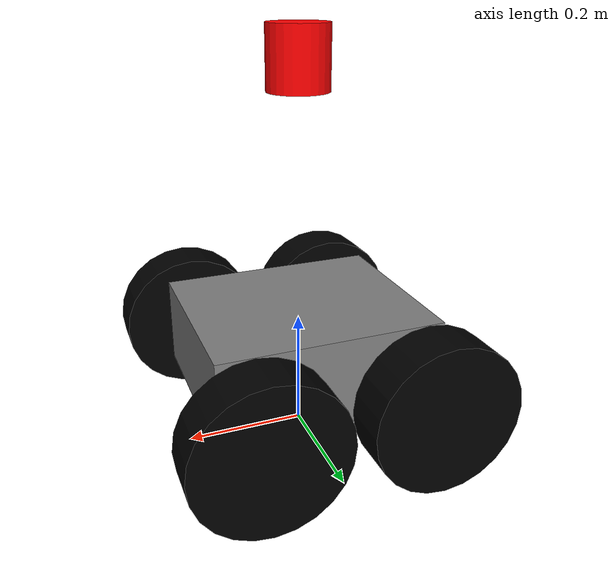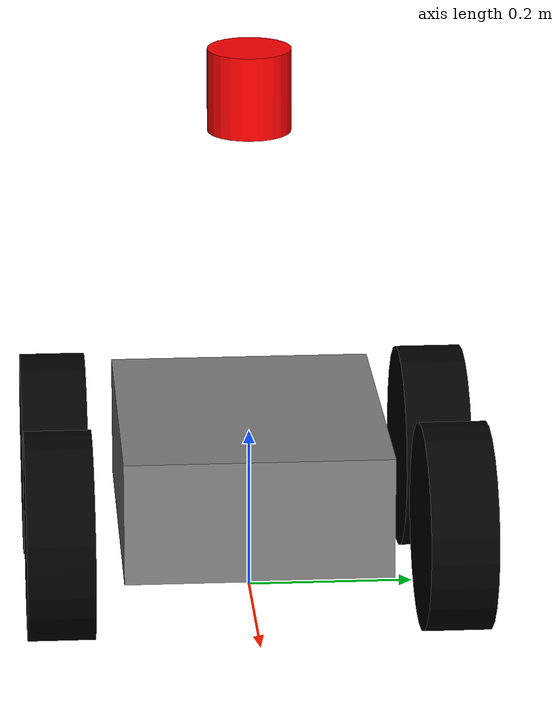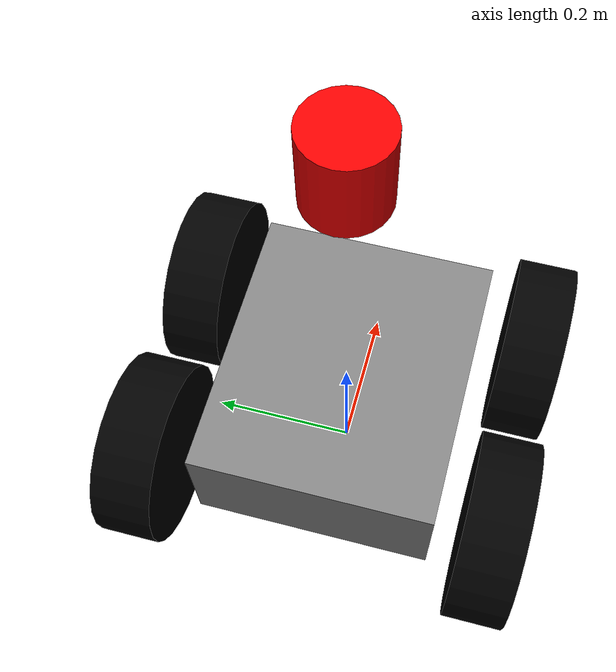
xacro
<?xml version="1.0"?>
<robot
  xmlns:xacro="http://ros.org/wiki/xacro"
  xmlns:controller="http://playerstage.sourceforge.net/gazebo/xmlschema/#controller"
  xmlns:interface="http://playerstage.sourceforge.net/gazebo/xmlschema/#interface"
  xmlns:sensor="http://playerstage.sourceforge.net/gazebo/xmlschema/#sensor"
  xmlns:gz="http://gazebosim.org/schema"
  name="robot">

  <xacro:include filename="$(find rmagine_gazebo_plugins)/urdf/common.urdf.xacro" />
  <xacro:include filename="$(find rmagine_gazebo_plugins)/urdf/wheel.urdf.xacro" />

  <!-- Args -->
  <xacro:arg name="enable_gazebo_scan" default="true"/>
  <xacro:arg name="rmagine_backend" default="embree"/>

  <xacro:property name="M_PI" value="3.14159265359"/>

  <xacro:property name="body_height" value="0.15"/>
  <xacro:property name="body_length" value="0.38"/>
  <xacro:property name="body_width" value="0.32"/>

  <xacro:property name="axis_front" value="0.14"/>
  <xacro:property name="axis_back" value="-0.14"/>

  <xacro:property name="wheel_thickness" value="0.08"/>
  <xacro:property name="wheel_body_offset" value="${wheel_thickness/2 + 0.035}"/>
  <xacro:property name="wheel_radius" value="0.125"/>
  <xacro:property name="axis_height" value="-0.03"/>
  <xacro:property name="axis_right" value="${-body_width/2 - wheel_body_offset}"/>
  <xacro:property name="axis_left" value="${body_width/2 + wheel_body_offset}"/>
  <xacro:property name="axis_length" value="${body_width + 2 * wheel_body_offset}" />
  <xacro:property name="turning_adaptation" value="2.95" />

  <xacro:property name="body_mass" value="25.0"/>
  <xacro:property name="wheel_mass" value="5.0"/>

  <xacro:property name="imu_width" value="0.036"/>
  <xacro:property name="imu_length" value="0.038"/>
  <xacro:property name="imu_height" value="0.012"/>

  <xacro:property name="imu_offset_x" value="0"/>
  <xacro:property name="imu_offset_y" value="0"/>
  <xacro:property name="imu_offset_z" value="${- body_height/2 + 0.005 + 0.007}"/>

  <xacro:property name="em_body_length" value="0.11"/>
  <xacro:property name="em_body_width" value="0.04"/>
  <xacro:property name="em_body_height" value="0.03"/>

  <xacro:property name="em_button_radius" value="0.0125"/>
  <xacro:property name="em_button_depth" value="0.02" />

  <link name="base_footprint"/>
  <link name="base_link">
    <visual>
      <origin xyz="0 0 0" rpy="0 0 0" />
      <geometry>
        <box size="${body_length} ${body_width} ${body_height}"/>
      </geometry>
      <material name="silver" >
        <color rgba="0.5 0.5 0.5 1" />
      </material>
    </visual>
    <collision>
      <origin xyz="0 0 0" rpy="0 0 0" />
      <geometry>
        <box size="${body_length} ${body_width} ${body_height}"/>
      </geometry>
    </collision>
    <xacro:box_inertial
      x="${body_length}"
      y="${body_width}"
      z="${body_height}"
      mass="${body_mass}"/>
  </link>

  <joint name="base_footprint_to_base_joint" type="fixed">
    <origin xyz="0 0 ${wheel_radius - axis_height}" rpy="0 0 0" />
    <parent link="base_footprint"/>
    <child link="base_link" />
  </joint>

  <xacro:wheel name="left_front_wheel" parent="base_link">
    <origin xyz="${axis_front} ${axis_left} ${axis_height}" rpy="0 0 0"/>
  </xacro:wheel>

  <xacro:wheel name="left_rear_wheel" parent="base_link">
    <origin xyz="${axis_back} ${axis_left} ${axis_height}" rpy="0 0 0" />
  </xacro:wheel>

  <xacro:wheel name="right_front_wheel" parent="base_link">
    <origin xyz="${axis_front} ${axis_right} ${axis_height}" rpy="0 0 0"/>
  </xacro:wheel>

  <xacro:wheel name="right_rear_wheel" parent="base_link">
    <origin xyz="${axis_back} ${axis_right} ${axis_height}" rpy="0 0 0" />
  </xacro:wheel>

  <!-- Gazebo Plugins -->

  <link name="lidar3d">
    <visual>
      <origin xyz="0 0 0" rpy="0 0 0" />
      <geometry>
        <cylinder radius="0.05" length="0.1"/>
      </geometry>
      <material name="red" >
        <color rgba="1 0 0 1" />
      </material>
    </visual>
    <collision>
      <geometry>
        <cylinder radius="0.05" length="0.1"/>
      </geometry>
    </collision>
    <xacro:cylinder_inertial
      radius="0.05"
      length="0.1"
      mass="0.1"
      />
  </link>

  <joint name="lidar3d_to_base_joint" type="fixed">
    <parent link="base_link" />
    <child link="lidar3d" />
    <origin xyz="0 0 ${body_height/2 + 0.4}"/>
  </joint>

  <gazebo reference="lidar3d">

    <xacro:if value="$(arg enable_gazebo_scan)">
      <sensor name="lidar3d_gazebo_sensor" type="gpu_lidar">
        <pose relative_to="lidar3d">0 0 0 0 0 0</pose>
        <topic>/model/robot/lidar3d/gazebo</topic>
        <update_rate>10</update_rate>
        <ray>
          <scan>
            <horizontal>
              <samples>360</samples>
              <resolution>1</resolution>
              <min_angle>${-M_PI}</min_angle>
              <max_angle>${M_PI}</max_angle>
            </horizontal>
            <vertical>
              <samples>16</samples>
              <resolution>0.01</resolution>
              <min_angle>-${15.0 * M_PI/180.0}</min_angle>
              <max_angle> ${15.0 * M_PI/180.0}</max_angle>
            </vertical>
          </scan>
          <range>
            <min>0.2</min>
            <max>100.0</max>
            <resolution>0.01</resolution>
          </range>
        </ray>
        <always_on>1</always_on>
        <visualize>true</visualize>
        <frame_id>lidar3d</frame_id>
        <gz_frame_id>lidar3d</gz_frame_id>
        <ign_frame_id>lidar3d</ign_frame_id>
      </sensor>
    </xacro:if>

    <sensor name="lidar3d_rmagine_sensor" type="custom" gz:type="rmagine_$(arg rmagine_backend)">
      <always_on>true</always_on>
      <update_rate>20</update_rate>
      <map_key>default</map_key>
      <frame>lidar3d</frame>
      <topic_scan>/model/robot/lidar3d/rmagine</topic_scan>
      <topic_points>/model/robot/lidar3d/rmagine/points</topic_points>
      <lidar>
        <scan>
          <horizontal>
            <min_angle>${-M_PI}</min_angle>
            <increment>${1.0 * M_PI / 180.0}</increment>
            <samples>360</samples>
          </horizontal>
          <vertical>
            <min_angle>${-15.0 * M_PI / 180.0}</min_angle>
            <increment>${2.0 * M_PI / 180.0}</increment>
            <samples>16</samples>
          </vertical>
        </scan>
        <range>
          <min>0.15</min>
          <max>30.0</max>
        </range>
      </lidar>
    </sensor>

  </gazebo>

  <gazebo>
    <plugin
        filename="libignition-gazebo-diff-drive-system.so"
        name="ignition::gazebo::systems::DiffDrive">

      <num_wheel_pairs>2</num_wheel_pairs>
      <!-- wheels0 -->
      <left_joint>left_front_wheel</left_joint>
      <right_joint>right_front_wheel</right_joint>
      <wheel_separation>${axis_length}</wheel_separation>
      <wheel_radius>${wheel_radius}</wheel_radius>

      <!-- wheels1-->
      <left_joint>left_rear_wheel</left_joint>
      <right_joint>right_rear_wheel</right_joint>
      <wheel_separation>${axis_length}</wheel_separation>
      <wheel_radius>${wheel_radius}</wheel_radius>

      <odom_publish_frequency>50</odom_publish_frequency>
      <frame_id>odom</frame_id>
      <child_frame_id>base_footprint</child_frame_id>
      <tf_topic>/model/robot/tf_odom</tf_topic>
    </plugin>
  </gazebo>

  <gazebo>
    <plugin
      filename="libignition-gazebo-joint-state-publisher-system.so"
      name="ignition::gazebo::systems::JointStatePublisher">
      <joint_name>right_front_wheel</joint_name>
      <topic>/model/robot/joint_states</topic>
    </plugin>

    <plugin
      filename="libignition-gazebo-joint-state-publisher-system.so"
      name="ignition::gazebo::systems::JointStatePublisher">
      <joint_name>left_front_wheel</joint_name>
      <topic>/model/robot/joint_states</topic>
    </plugin>

    <plugin
      filename="libignition-gazebo-joint-state-publisher-system.so"
      name="ignition::gazebo::systems::JointStatePublisher">
      <joint_name>right_rear_wheel</joint_name>
      <topic>/model/robot/joint_states</topic>
    </plugin>

    <plugin
      filename="libignition-gazebo-joint-state-publisher-system.so"
      name="ignition::gazebo::systems::JointStatePublisher">
      <joint_name>left_rear_wheel</joint_name>
      <topic>/model/robot/joint_states</topic>
    </plugin>

  </gazebo>

  <gazebo>
    <plugin
      filename="ignition-gazebo-pose-publisher-system"
      name="gz::sim::systems::PosePublisher">
      <use_pose_vector_msg>true</use_pose_vector_msg>
      <publish_nested_model_pose>true</publish_nested_model_pose>
      <static_publisher>true</static_publisher>
    </plugin>
  </gazebo>

</robot>

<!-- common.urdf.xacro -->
<robot
  xmlns:xacro="http://ros.org/wiki/xacro">
  <xacro:property name="M_PI" value="3.1415926535897931" />

  <!-- see https://secure.wikimedia.org/wikipedia/en/wiki/List_of_moment_of_inertia_tensors -->

  <!-- #################### versions without origin #################### -->
  <xacro:macro name="sphere_inertial" params="radius mass">
    <inertial>
      <mass value="${mass}" />
      <origin xyz="0 0 0" />
      <inertia ixx="${0.4 * mass * radius * radius}" ixy="0.0" ixz="0.0"
        iyy="${0.4 * mass * radius * radius}" iyz="0.0"
        izz="${0.4 * mass * radius * radius}" />
    </inertial>
  </xacro:macro>

  <xacro:macro name="cylinder_inertial" params="radius length mass">
    <inertial>
      <mass value="${mass}" />
      <origin xyz="0 0 0" />
      <inertia ixx="${0.0833333 * mass * (3 * radius * radius + length * length)}" ixy="0.0" ixz="0.0"
        iyy="${0.0833333 * mass * (3 * radius * radius + length * length)}" iyz="0.0"
        izz="${0.5 * mass * radius * radius}" />
    </inertial>
  </xacro:macro>

  <xacro:macro name="box_inertial" params="x y z mass">
    <inertial>
      <mass value="${mass}" />
      <origin xyz="0 0 0" />
      <inertia ixx="${0.0833333 * mass * (y*y + z*z)}" ixy="0.0" ixz="0.0"
        iyy="${0.0833333 * mass * (x*x + z*z)}" iyz="0.0"
        izz="${0.0833333 * mass * (x*x + y*y)}" />
    </inertial>
  </xacro:macro>

  <!-- #################### versions with origin #################### -->
  <xacro:macro name="sphere_inertial_with_origin" params="radius mass *origin">
    <inertial>
      <mass value="${mass}" />
      <xacro:insert_block name="origin" />
      <inertia ixx="${0.4 * mass * radius * radius}" ixy="0.0" ixz="0.0"
        iyy="${0.4 * mass * radius * radius}" iyz="0.0"
        izz="${0.4 * mass * radius * radius}" />
    </inertial>
  </xacro:macro>

  <xacro:macro name="cylinder_inertial_with_origin" params="radius length mass *origin">
    <inertial>
      <mass value="${mass}" />
      <xacro:insert_block name="origin" />
      <inertia ixx="${0.0833333 * mass * (3 * radius * radius + length * length)}" ixy="0.0" ixz="0.0"
        iyy="${0.0833333 * mass * (3 * radius * radius + length * length)}" iyz="0.0"
        izz="${0.5 * mass * radius * radius}" />
    </inertial>
  </xacro:macro>

  <xacro:macro name="box_inertial_with_origin" params="x y z mass *origin">
    <inertial>
      <mass value="${mass}" />
      <xacro:insert_block name="origin" />
      <inertia ixx="${0.0833333 * mass * (y*y + z*z)}" ixy="0.0" ixz="0.0"
        iyy="${0.0833333 * mass * (x*x + z*z)}" iyz="0.0"
        izz="${0.0833333 * mass * (x*x + y*y)}" />
    </inertial>
  </xacro:macro>

</robot>

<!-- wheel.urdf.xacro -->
<robot xmlns:xacro="http://ros.org/wiki/xacro" name="wheel">
    <xacro:macro name="wheel" params="name parent *joint_pose">
        <link name="${name}_link">

            <visual>
                <origin xyz="0 0 0" rpy="${M_PI/2} 0 0" />
                <geometry>
                    <cylinder length="${wheel_thickness}" radius="${wheel_radius}"/>
                </geometry>
                <material name="black" >
                    <color rgba="0.0 0.0 0.0 1.0" />
                </material>
            </visual>

            <collision>
                <origin xyz="0 0 0" rpy="${M_PI/2} 0 0" />
                <geometry>
                    <cylinder length="${wheel_thickness}" radius="${wheel_radius}"/>
                </geometry>
            </collision>

            <xacro:cylinder_inertial_with_origin radius="${wheel_radius}" length="${wheel_thickness}" mass="${wheel_mass}">
                <origin xyz="0 0 0" rpy="${M_PI/2} 0 0"/>
            </xacro:cylinder_inertial_with_origin>
        </link>

        <gazebo reference="${name}_link">
            <mu1 value="1.0"/>
            <mu2 value="1.0"/>
            <fdir1 value="1 0 0"/>
            <material>Gazebo/DarkGrey</material>
        </gazebo>

        <joint name="${name}" type="continuous">
            <parent link="${parent}"/>
            <child link="${name}_link"/>
            <xacro:insert_block name="joint_pose"/>
            <axis xyz="0 1 0" rpy="0 0 0" />
        </joint>

    </xacro:macro>
</robot>
